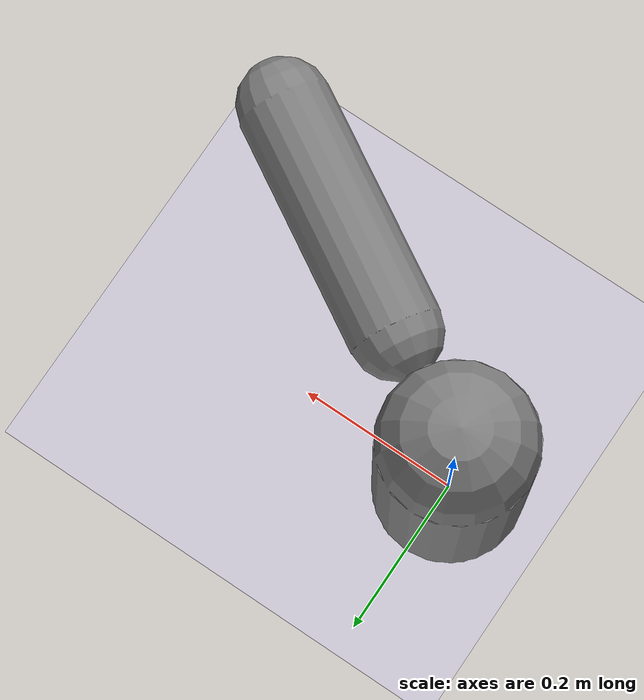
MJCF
<?xml version='1.0' encoding='UTF-8'?>
<mujoco model="robot_model">
  <worldbody>
    <light name="light" pos="0 -3 10" dir="0 0.5 -1" diffuse=".8 .8 .8" specular="0.1 0.1 0.1"/>
    <geom name="floor" type="plane" size="10.0 10.0 0.1" pos="0 0 0" rgba="0.8 0.8 1 1" contype="2" conaffinity="1"/>
    <body name="limb0" pos="0 0 0">
      <geom name="limb0_geom" type="capsule" fromto="0 0 0 0 0 0.3079146855055481" size="0.09095693498571633" density="432.77881914895573" contype="1" conaffinity="2"/>
      <site type="sphere" size="0.01" name="limb0_site0" pos="0.12917842077227065 -0.07604142366213544 0.23583712843188076" quat="0.7071067811865476 0.3587070116545831 0.6093679346583956 0.0"/>
      <freejoint name="limb0_root"/>
      <body name="limb1" pos="0.12917842077227065 -0.07604142366213544 0.23583712843188076" quat="0.7071067811865476 0.3587070116545831 0.6093679346583956 0.0">
        <geom name="limb1_geom" type="capsule" fromto="0 0 0 0 0 0.2889201347000046" size="0.05494090524482928" density="1130.0975469127086" contype="1" conaffinity="2"/>
        <joint name="joint_limb0_limb1_0" type="hinge" axis="0 1 0" range="-32.74030090489063 32.74030090489063" damping="5.0"/>
      </body>
    </body>
  </worldbody>
  <actuator>
    <position name="position_actuator_joint_limb0_limb1_0" joint="joint_limb0_limb1_0" gear="0.610344357995948" inheritrange="1" forcerange="-19.406423745630033 19.406423745630033" forcelimited="true" kp="100.0"/>
  </actuator>
  <contact>
    <pair geom1="limb0_geom" geom2="limb1_geom"/>
  </contact>
</mujoco>
